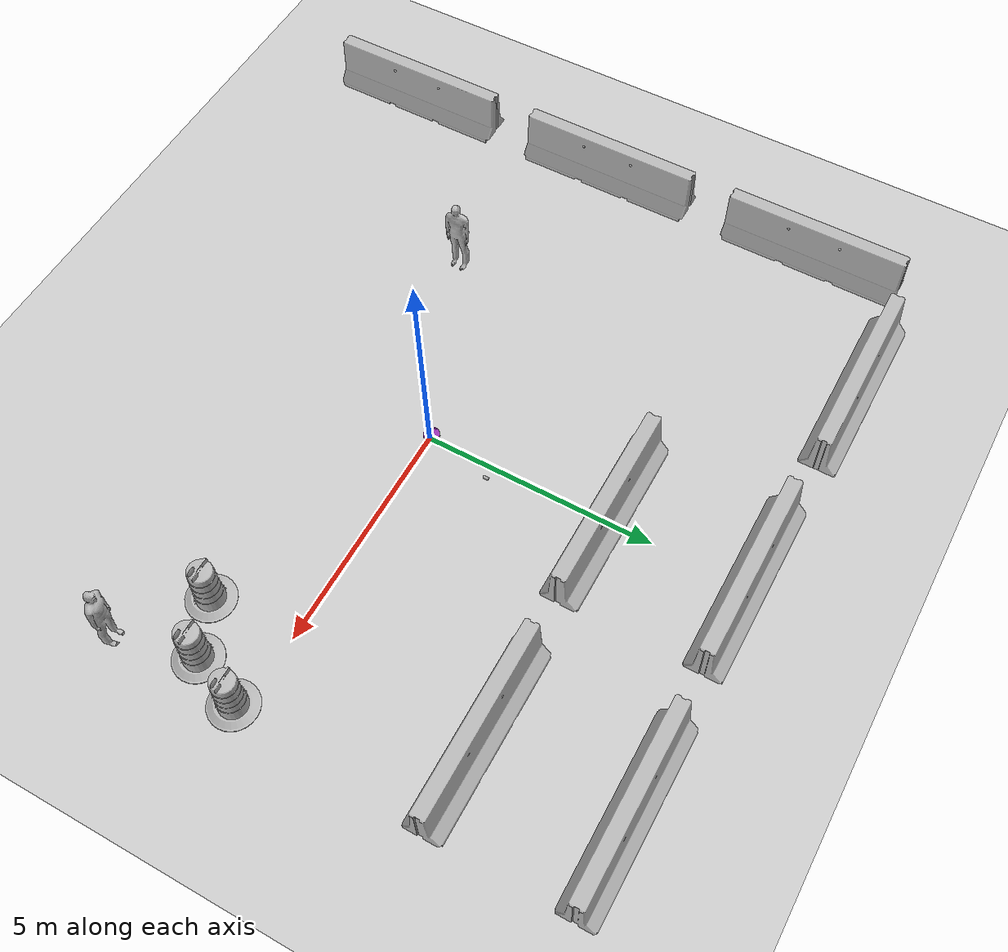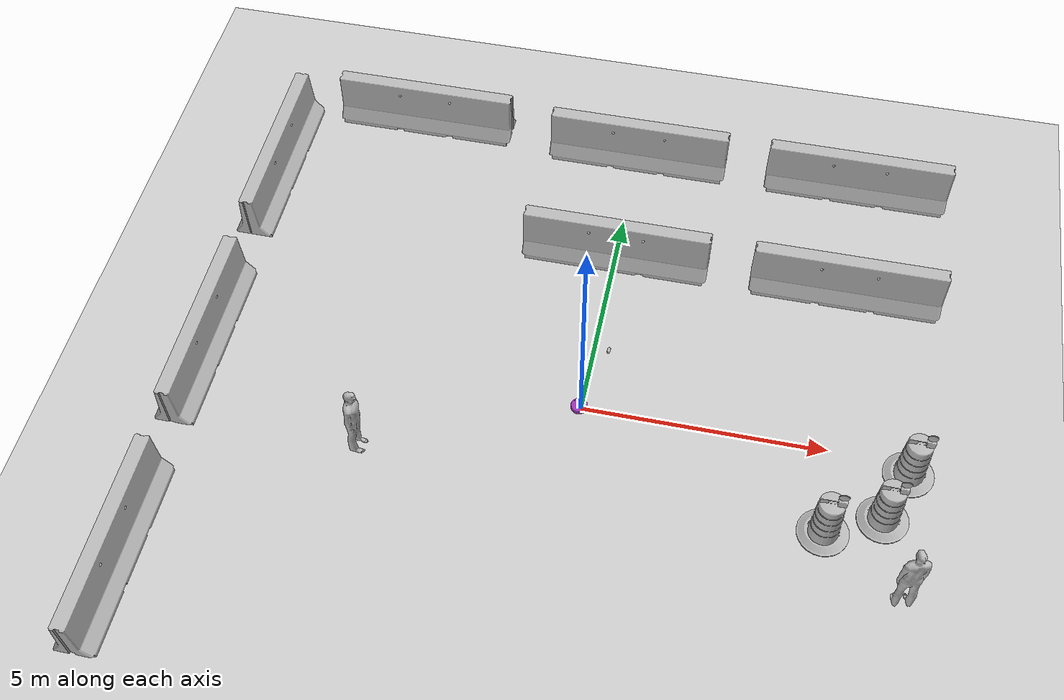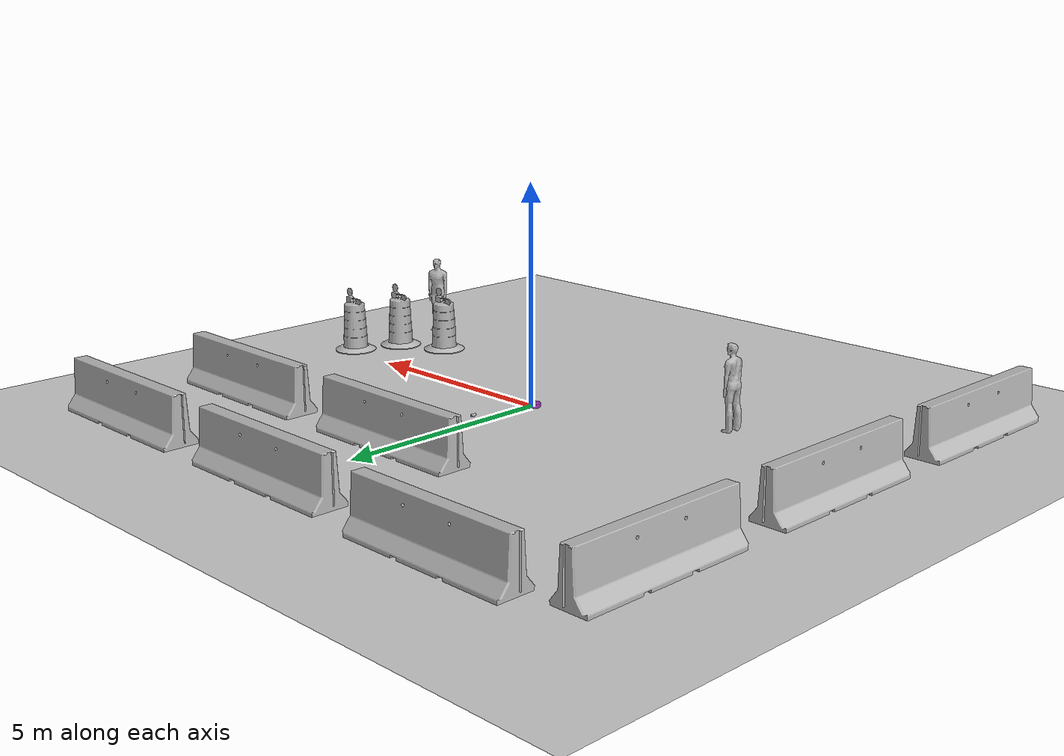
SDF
<sdf version="1.6">
 <world name="default">
  <light name="sun" type="directional">
   <pose>0 0 10 0 -0 0</pose>
   <diffuse>0.8 0.8 0.8 1</diffuse>
   <specular>0.2 0.2 0.2 1</specular>
   <attenuation>
    <range>1000</range>
    <constant>0.9</constant>
    <linear>0.01</linear>
    <quadratic>0.001</quadratic>
   </attenuation>
   <direction>-0.5 0.1 -0.9</direction>
  </light>
  <model name="ground_plane">
   <static>1</static>
   <link name="link">
    <collision name="collision">
     <geometry><plane><normal>0 0 1</normal><size>100 100</size></plane></geometry>
     <surface><friction><ode><mu>100</mu><mu2>50</mu2></ode></friction></surface>
    </collision>
    <visual name="visual">
     <cast_shadows>0</cast_shadows>
     <geometry><plane><normal>0 0 1</normal><size>100 100</size></plane></geometry>
     <material>
      <script><uri>file://media/materials/scripts/gazebo.material</uri><name>Gazebo/Grey</name></script>
     </material>
    </visual>
   </link>
  </model>
  <gravity>0 0 -9.8</gravity>
  <magnetic_field>6e-06 2.3e-05 -4.2e-05</magnetic_field>
  <atmosphere type="adiabatic"/>
  <physics name="default_physics" default="0" type="ode">
   <max_step_size>0.001</max_step_size>
   <real_time_factor>1</real_time_factor>
   <real_time_update_rate>1000</real_time_update_rate>
  </physics>
  <scene><ambient>0.4 0.4 0.4 1</ambient><background>0.7 0.7 0.7 1</background><shadows>1</shadows></scene>
  <spherical_coordinates>
   <surface_model>EARTH_WGS84</surface_model>
   <latitude_deg>0</latitude_deg>
   <longitude_deg>0</longitude_deg>
   <elevation>0</elevation>
   <heading_deg>0</heading_deg>
  </spherical_coordinates>
  <model name="coke_can">
   <link name="link">
    <inertial>
     <pose>-0.01 -0.012 0.15 0 -0 0</pose>
     <mass>0.39</mass>
     <inertia><ixx>0.00058</ixx><ixy>0</ixy><ixz>0</ixz><iyy>0.00058</iyy><iyz>0</iyz><izz>0.00019</izz></inertia>
    </inertial>
    <collision name="collision">
     <pose>0 0 -0.46 0 -0 0</pose>
     <geometry><mesh><uri>model://coke_can/meshes/coke_can.dae</uri></mesh></geometry>
     <surface>
      <friction><ode><mu>1</mu><mu2>1</mu2></ode></friction>
      <contact><ode><kp>1e+07</kp><kd>1</kd><min_depth>0.001</min_depth><max_vel>0.1</max_vel></ode></contact>
     </surface>
    </collision>
    <visual name="visual">
     <pose>0 0 -0.46 0 -0 0</pose>
     <geometry><mesh><uri>model://coke_can/meshes/coke_can.dae</uri></mesh></geometry>
    </visual>
   </link>
   <pose>0.307033 1.68265 0.066423 -1.57511 0.79082 -0.046848</pose>
  </model>
  <model name="coke_can_clone">
   <link name="link">
    <inertial>
     <pose>-0.01 -0.012 0.15 0 -0 0</pose>
     <mass>0.39</mass>
     <inertia><ixx>0.00058</ixx><ixy>0</ixy><ixz>0</ixz><iyy>0.00058</iyy><iyz>0</iyz><izz>0.00019</izz></inertia>
    </inertial>
    <collision name="collision">
     <pose>0 0 -0.46 0 -0 0</pose>
     <geometry><mesh><uri>model://coke_can/meshes/coke_can.dae</uri></mesh></geometry>
     <surface>
      <friction><ode><mu>1</mu><mu2>1</mu2></ode></friction>
      <contact><ode><kp>1e+07</kp><kd>1</kd><min_depth>0.001</min_depth><max_vel>0.1</max_vel></ode></contact>
     </surface>
    </collision>
    <visual name="visual">
     <pose>0 0 -0.46 0 -0 0</pose>
     <geometry><mesh><uri>model://coke_can/meshes/coke_can.dae</uri></mesh></geometry>
    </visual>
   </link>
   <pose>1.0067 1.64892 -0.004906 -0.064172 0.001466 -0.000136</pose>
  </model>
  <model name="Construction Barrel">
   <link name="link">
    <inertial>
     <pose>0 0 0.4 0 -0 0</pose>
     <mass>500</mass>
     <inertia><ixx>51.2096</ixx><iyy>51.2096</iyy><izz>25</izz><ixy>0</ixy><ixz>0</ixz><iyz>0</iyz></inertia>
    </inertial>
    <collision name="collision">
     <geometry><mesh><uri>model://construction_barrel/meshes/construction_barrel.dae</uri></mesh></geometry>
    </collision>
    <visual name="visual">
     <geometry><mesh><uri>model://construction_barrel/meshes/construction_barrel.dae</uri></mesh></geometry>
    </visual>
   </link>
   <pose>6.59117 -0.229072 -1e-06 4e-06 -2e-06 -3.7e-05</pose>
  </model>
  <model name="Construction Barrel_clone">
   <link name="link">
    <inertial>
     <pose>0 0 0.4 0 -0 0</pose>
     <mass>500</mass>
     <inertia><ixx>51.2096</ixx><iyy>51.2096</iyy><izz>25</izz><ixy>0</ixy><ixz>0</ixz><iyz>0</iyz></inertia>
    </inertial>
    <collision name="collision">
     <geometry><mesh><uri>model://construction_barrel/meshes/construction_barrel.dae</uri></mesh></geometry>
    </collision>
    <visual name="visual">
     <geometry><mesh><uri>model://construction_barrel/meshes/construction_barrel.dae</uri></mesh></geometry>
    </visual>
   </link>
   <pose>6.15493 -1.32723 -2e-06 1e-06 8e-06 -2.6e-05</pose>
  </model>
  <model name="Construction Barrel_clone_clone">
   <link name="link">
    <inertial>
     <pose>0 0 0.4 0 -0 0</pose>
     <mass>500</mass>
     <inertia><ixx>51.2096</ixx><iyy>51.2096</iyy><izz>25</izz><ixy>0</ixy><ixz>0</ixz><iyz>0</iyz></inertia>
    </inertial>
    <collision name="collision">
     <geometry><mesh><uri>model://construction_barrel/meshes/construction_barrel.dae</uri></mesh></geometry>
    </collision>
    <visual name="visual">
     <geometry><mesh><uri>model://construction_barrel/meshes/construction_barrel.dae</uri></mesh></geometry>
    </visual>
   </link>
   <pose>5.04937 -1.83027 -1e-06 2e-06 -1e-06 -4.4e-05</pose>
  </model>
  <model name="jersey_barrier">
   <static>1</static>
   <link name="link">
    <visual name="visual">
     <geometry><mesh><uri>model://jersey_barrier/meshes/jersey_barrier.dae</uri></mesh></geometry>
    </visual>
    <collision name="upright">
     <pose>0 0 0.5715 0 -0 0</pose>
     <geometry><box><size>4.06542 0.3063 1.143</size></box></geometry>
    </collision>
    <collision name="base">
     <pose>0 0 0.032258 0 -0 0</pose>
     <geometry><box><size>4.06542 0.8107 0.064516</size></box></geometry>
    </collision>
    <collision name="base2">
     <pose>0 0 0.1 0 -0 0</pose>
     <geometry><box><size>4.06542 0.65 0.1</size></box></geometry>
    </collision>
    <collision name="base3">
     <pose>0 0 0.2 0 -0 0</pose>
     <geometry><box><size>4.06542 0.5 0.1</size></box></geometry>
    </collision>
    <collision name="left-angle">
     <pose>0 -0.224 0.2401 0.9 -0 0</pose>
     <geometry><box><size>4.06542 0.5 0.064516</size></box></geometry>
    </collision>
    <collision name="right-angle">
     <pose>0 0.224 0.2401 -0.9 0 0</pose>
     <geometry><box><size>4.06542 0.5 0.064516</size></box></geometry>
    </collision>
   </link>
   <pose>-5.0568 7.16448 0 0 -0 0</pose>
  </model>
  <model name="jersey_barrier_clone">
   <static>1</static>
   <link name="link">
    <visual name="visual">
     <geometry><mesh><uri>model://jersey_barrier/meshes/jersey_barrier.dae</uri></mesh></geometry>
    </visual>
    <collision name="upright">
     <pose>0 0 0.5715 0 -0 0</pose>
     <geometry><box><size>4.06542 0.3063 1.143</size></box></geometry>
    </collision>
    <collision name="base">
     <pose>0 0 0.032258 0 -0 0</pose>
     <geometry><box><size>4.06542 0.8107 0.064516</size></box></geometry>
    </collision>
    <collision name="base2">
     <pose>0 0 0.1 0 -0 0</pose>
     <geometry><box><size>4.06542 0.65 0.1</size></box></geometry>
    </collision>
    <collision name="base3">
     <pose>0 0 0.2 0 -0 0</pose>
     <geometry><box><size>4.06542 0.5 0.1</size></box></geometry>
    </collision>
    <collision name="left-angle">
     <pose>0 -0.224 0.2401 0.9 -0 0</pose>
     <geometry><box><size>4.06542 0.5 0.064516</size></box></geometry>
    </collision>
    <collision name="right-angle">
     <pose>0 0.224 0.2401 -0.9 0 0</pose>
     <geometry><box><size>4.06542 0.5 0.064516</size></box></geometry>
    </collision>
   </link>
   <pose>0 7 0 0 -0 0</pose>
  </model>
  <model name="jersey_barrier_clone_clone">
   <static>1</static>
   <link name="link">
    <visual name="visual">
     <geometry><mesh><uri>model://jersey_barrier/meshes/jersey_barrier.dae</uri></mesh></geometry>
    </visual>
    <collision name="upright">
     <pose>0 0 0.5715 0 -0 0</pose>
     <geometry><box><size>4.06542 0.3063 1.143</size></box></geometry>
    </collision>
    <collision name="base">
     <pose>0 0 0.032258 0 -0 0</pose>
     <geometry><box><size>4.06542 0.8107 0.064516</size></box></geometry>
    </collision>
    <collision name="base2">
     <pose>0 0 0.1 0 -0 0</pose>
     <geometry><box><size>4.06542 0.65 0.1</size></box></geometry>
    </collision>
    <collision name="base3">
     <pose>0 0 0.2 0 -0 0</pose>
     <geometry><box><size>4.06542 0.5 0.1</size></box></geometry>
    </collision>
    <collision name="left-angle">
     <pose>0 -0.224 0.2401 0.9 -0 0</pose>
     <geometry><box><size>4.06542 0.5 0.064516</size></box></geometry>
    </collision>
    <collision name="right-angle">
     <pose>0 0.224 0.2401 -0.9 0 0</pose>
     <geometry><box><size>4.06542 0.5 0.064516</size></box></geometry>
    </collision>
   </link>
   <pose>5 7 0 0 -0 0</pose>
  </model>
  <model name="dtw_robot">
   <link name="base_link">
    <inertial>
     <pose>-0.05 0 0.02 0 -0 0</pose>
     <mass>0.1</mass>
     <inertia>
      <ixx>0.0001</ixx>
      <ixy>0</ixy>
      <ixz>-2.71051e-20</ixz>
      <iyy>0.0001</iyy>
      <iyz>0</iyz>
      <izz>0.0001</izz>
     </inertia>
    </inertial>
    <collision name="base_link_fixed_joint_lump__ball_link_collision">
     <pose>-0.14 0 0.02 0 -0 0</pose>
     <geometry><sphere><radius>0.02</radius></sphere></geometry>
     <surface><friction><ode><mu>0.5</mu><mu2>0.5</mu2></ode></friction></surface>
    </collision>
    <collision name="base_link_fixed_joint_lump__body_link_collision_1">
     <pose>-0.05 0 0.02 0 -0 0</pose>
     <geometry>
      <mesh>
       <scale>1 1 1</scale>
       <uri>/home/rigel/ROS_ws/Roombot/src/system/roombot_gazebo/stl/Roomba_model.stl</uri>
      </mesh>
     </geometry>
    </collision>
    <collision name="base_link_fixed_joint_lump__lidar_link_collision_2">
     <pose>-0.05 0 0.14 0 -0 0</pose>
     <geometry><cylinder><length>0.06</length><radius>0.02</radius></cylinder></geometry>
    </collision>
    <visual name="base_link_fixed_joint_lump__ball_link_visual">
     <pose>-0.14 0 0.02 0 -0 0</pose>
     <geometry><sphere><radius>0.02</radius></sphere></geometry>
     <material>
      <script><name>Gazebo/Grey</name><uri>file://media/materials/scripts/gazebo.material</uri></script>
     </material>
    </visual>
    <visual name="base_link_fixed_joint_lump__body_link_visual_1">
     <pose>-0.05 0 0.02 0 -0 0</pose>
     <geometry>
      <mesh>
       <scale>1 1 1</scale>
       <uri>/home/rigel/ROS_ws/Roombot/src/system/roombot_gazebo/stl/Roomba_model.stl</uri>
      </mesh>
     </geometry>
     <material>
      <script><name>Gazebo/Purple</name><uri>file://media/materials/scripts/gazebo.material</uri></script>
     </material>
    </visual>
    <visual name="base_link_fixed_joint_lump__lidar_link_visual_2">
     <pose>-0.05 0 0.14 0 -0 0</pose>
     <geometry><cylinder><length>0.06</length><radius>0.02</radius></cylinder></geometry>
     <material>
      <script><name>Gazebo/Blue</name><uri>file://media/materials/scripts/gazebo.material</uri></script>
     </material>
    </visual>
    <sensor name="camera" type="camera">
     <update_rate>10</update_rate>
     <camera name="camera">
      <pose>0 0 0 -1.57079 -1.57079 3.14159</pose>
      <horizontal_fov>1.39626</horizontal_fov>
      <image><width>800</width><height>600</height><format>R8G8B8</format></image>
      <clip><near>0.02</near><far>300</far></clip>
      <noise><type>gaussian</type><mean>0</mean><stddev>0.007</stddev></noise>
     </camera>
     <plugin name="camera_controller" filename="libgazebo_ros_camera.so">
      <alwaysOn>true</alwaysOn>
      <updateRate>0.0</updateRate>
      <cameraName>camera</cameraName>
      <imageTopicName>image_raw</imageTopicName>
      <cameraInfoTopicName>camera_info</cameraInfoTopicName>
      <frameName>camera_link</frameName>
      <hackBaseline>0.07</hackBaseline>
      <distortionK1>0.0</distortionK1>
      <distortionK2>0.0</distortionK2>
      <distortionK3>0.0</distortionK3>
      <distortionT1>0.0</distortionT1>
      <distortionT2>0.0</distortionT2>
      <robotNamespace>/</robotNamespace>
     </plugin>
     <pose>-0.05 0 0.3 -1.5708 -0 -1.5708</pose>
    </sensor>
    <sensor name="imu_sensor" type="imu">
     <always_on>1</always_on>
     <update_rate>100</update_rate>
     <visualize>1</visualize>
     <topic>data</topic>
     <plugin name="imu_plugin" filename="libgazebo_ros_imu_sensor.so">
      <topicName>imu/data</topicName>
      <bodyName>imu_link</bodyName>
      <updateRateHZ>10.0</updateRateHZ>
      <gaussianNoise>0.0</gaussianNoise>
      <xyzOffset>0 0 0</xyzOffset>
      <rpyOffset>0 0 0</rpyOffset>
      <frameName>imu_link</frameName>
      <robotNamespace>/</robotNamespace>
     </plugin>
     <pose>-0.05 0 0 0 -0 0</pose>
    </sensor>
    <sensor name="lidar" type="ray">
     <visualize>0</visualize>
     <update_rate>10</update_rate>
     <ray>
      <scan>
       <horizontal>
        <samples>400</samples>
        <resolution>1</resolution>
        <min_angle>-1.5708</min_angle>
        <max_angle>1.5708</max_angle>
       </horizontal>
       <vertical><samples>1</samples><min_angle>0</min_angle><max_angle>0</max_angle></vertical>
      </scan>
      <range><min>0.1</min><max>20</max><resolution>0.01</resolution></range>
      <noise><type>gaussian</type><mean>0</mean><stddev>0.01</stddev></noise>
     </ray>
     <plugin name="gazebo_ros_lidar_controller" filename="libgazebo_ros_laser.so">
      <topicName>/lidar_link/scan</topicName>
      <frameName>lidar_link</frameName>
      <robotNamespace>/</robotNamespace>
     </plugin>
     <pose>-0.05 0 0.14 0 -0 0</pose>
    </sensor>
   </link>
   <link name="left_wheel_link">
    <pose>0 0.1 0.03 -1.5708 0 0</pose>
    <inertial>
     <mass>0.1</mass>
     <inertia><ixx>0.0001</ixx><ixy>0</ixy><ixz>0</ixz><iyy>0.0001</iyy><iyz>0</iyz><izz>0.0001</izz></inertia>
    </inertial>
    <collision name="left_wheel_link_collision">
     <geometry><cylinder><length>0.01</length><radius>0.03</radius></cylinder></geometry>
     <surface>
      <contact><ode><kp>50000</kp><kd>10</kd></ode></contact>
      <friction><ode><mu>2.5</mu><mu2>2.5</mu2></ode></friction>
     </surface>
    </collision>
    <visual name="left_wheel_link_visual">
     <geometry><cylinder><length>0.01</length><radius>0.03</radius></cylinder></geometry>
     <material>
      <script><name>Gazebo/Grey</name><uri>file://media/materials/scripts/gazebo.material</uri></script>
     </material>
    </visual>
   </link>
   <joint name="left_wheel_joint" type="revolute">
    <child>left_wheel_link</child>
    <parent>base_link</parent>
    <axis>
     <xyz>0 1 0</xyz>
     <limit><lower>-1e+16</lower><upper>1e+16</upper></limit>
     <dynamics>
      <damping>0.1</damping>
      <friction>0</friction>
      <spring_reference>0</spring_reference>
      <spring_stiffness>0</spring_stiffness>
     </dynamics>
     <use_parent_model_frame>1</use_parent_model_frame>
    </axis>
   </joint>
   <link name="right_wheel_link">
    <pose>0 -0.1 0.03 -1.5708 0 0</pose>
    <inertial>
     <mass>0.1</mass>
     <inertia><ixx>0.0001</ixx><ixy>0</ixy><ixz>0</ixz><iyy>0.0001</iyy><iyz>0</iyz><izz>0.0001</izz></inertia>
    </inertial>
    <collision name="right_wheel_link_collision">
     <geometry><cylinder><length>0.01</length><radius>0.03</radius></cylinder></geometry>
     <surface>
      <contact><ode><kp>50000</kp><kd>10</kd></ode></contact>
      <friction><ode><mu>2.5</mu><mu2>2.5</mu2></ode></friction>
     </surface>
    </collision>
    <visual name="right_wheel_link_visual">
     <geometry><cylinder><length>0.01</length><radius>0.03</radius></cylinder></geometry>
     <material>
      <script><name>Gazebo/Grey</name><uri>file://media/materials/scripts/gazebo.material</uri></script>
     </material>
    </visual>
   </link>
   <joint name="right_wheel_joint" type="revolute">
    <child>right_wheel_link</child>
    <parent>base_link</parent>
    <axis>
     <xyz>0 1 0</xyz>
     <limit><lower>-1e+16</lower><upper>1e+16</upper></limit>
     <dynamics>
      <damping>0.1</damping>
      <friction>0</friction>
      <spring_reference>0</spring_reference>
      <spring_stiffness>0</spring_stiffness>
     </dynamics>
     <use_parent_model_frame>1</use_parent_model_frame>
    </axis>
   </joint>
   <static>0</static>
   <plugin name="gazebo_ros_control" filename="libgazebo_ros_control.so">
    <robotNamespace>/dtw_robot</robotNamespace>
   </plugin>
   <pose>-3.3e-05 0 -1.4e-05 -0 6.6e-05 2.3e-05</pose>
  </model>
  <model name="jersey_barrier_clone_0_clone">
   <static>1</static>
   <link name="link">
    <visual name="visual">
     <geometry><mesh><uri>model://jersey_barrier/meshes/jersey_barrier.dae</uri></mesh></geometry>
    </visual>
    <collision name="upright">
     <pose>0 0 0.5715 0 -0 0</pose>
     <geometry><box><size>4.06542 0.3063 1.143</size></box></geometry>
    </collision>
    <collision name="base">
     <pose>0 0 0.032258 0 -0 0</pose>
     <geometry><box><size>4.06542 0.8107 0.064516</size></box></geometry>
    </collision>
    <collision name="base2">
     <pose>0 0 0.1 0 -0 0</pose>
     <geometry><box><size>4.06542 0.65 0.1</size></box></geometry>
    </collision>
    <collision name="base3">
     <pose>0 0 0.2 0 -0 0</pose>
     <geometry><box><size>4.06542 0.5 0.1</size></box></geometry>
    </collision>
    <collision name="left-angle">
     <pose>0 -0.224 0.2401 0.9 -0 0</pose>
     <geometry><box><size>4.06542 0.5 0.064516</size></box></geometry>
    </collision>
    <collision name="right-angle">
     <pose>0 0.224 0.2401 -0.9 0 0</pose>
     <geometry><box><size>4.06542 0.5 0.064516</size></box></geometry>
    </collision>
   </link>
   <pose>0 4 0 0 -0 0</pose>
  </model>
  <model name="jersey_barrier_clone_0_clone_clone">
   <static>1</static>
   <link name="link">
    <visual name="visual">
     <geometry><mesh><uri>model://jersey_barrier/meshes/jersey_barrier.dae</uri></mesh></geometry>
    </visual>
    <collision name="upright">
     <pose>0 0 0.5715 0 -0 0</pose>
     <geometry><box><size>4.06542 0.3063 1.143</size></box></geometry>
    </collision>
    <collision name="base">
     <pose>0 0 0.032258 0 -0 0</pose>
     <geometry><box><size>4.06542 0.8107 0.064516</size></box></geometry>
    </collision>
    <collision name="base2">
     <pose>0 0 0.1 0 -0 0</pose>
     <geometry><box><size>4.06542 0.65 0.1</size></box></geometry>
    </collision>
    <collision name="base3">
     <pose>0 0 0.2 0 -0 0</pose>
     <geometry><box><size>4.06542 0.5 0.1</size></box></geometry>
    </collision>
    <collision name="left-angle">
     <pose>0 -0.224 0.2401 0.9 -0 0</pose>
     <geometry><box><size>4.06542 0.5 0.064516</size></box></geometry>
    </collision>
    <collision name="right-angle">
     <pose>0 0.224 0.2401 -0.9 0 0</pose>
     <geometry><box><size>4.06542 0.5 0.064516</size></box></geometry>
    </collision>
   </link>
   <pose>5 4 0 0 -0 0</pose>
  </model>
  <model name="jersey_barrier_clone_0">
   <static>1</static>
   <link name="link">
    <visual name="visual">
     <geometry><mesh><uri>model://jersey_barrier/meshes/jersey_barrier.dae</uri></mesh></geometry>
    </visual>
    <collision name="upright">
     <pose>0 0 0.5715 0 -0 0</pose>
     <geometry><box><size>4.06542 0.3063 1.143</size></box></geometry>
    </collision>
    <collision name="base">
     <pose>0 0 0.032258 0 -0 0</pose>
     <geometry><box><size>4.06542 0.8107 0.064516</size></box></geometry>
    </collision>
    <collision name="base2">
     <pose>0 0 0.1 0 -0 0</pose>
     <geometry><box><size>4.06542 0.65 0.1</size></box></geometry>
    </collision>
    <collision name="base3">
     <pose>0 0 0.2 0 -0 0</pose>
     <geometry><box><size>4.06542 0.5 0.1</size></box></geometry>
    </collision>
    <collision name="left-angle">
     <pose>0 -0.224 0.2401 0.9 -0 0</pose>
     <geometry><box><size>4.06542 0.5 0.064516</size></box></geometry>
    </collision>
    <collision name="right-angle">
     <pose>0 0.224 0.2401 -0.9 0 0</pose>
     <geometry><box><size>4.06542 0.5 0.064516</size></box></geometry>
    </collision>
   </link>
   <pose>-8 5 0 0 -0 1.57</pose>
  </model>
  <model name="jersey_barrier_clone_1">
   <static>1</static>
   <link name="link">
    <visual name="visual">
     <geometry><mesh><uri>model://jersey_barrier/meshes/jersey_barrier.dae</uri></mesh></geometry>
    </visual>
    <collision name="upright">
     <pose>0 0 0.5715 0 -0 0</pose>
     <geometry><box><size>4.06542 0.3063 1.143</size></box></geometry>
    </collision>
    <collision name="base">
     <pose>0 0 0.032258 0 -0 0</pose>
     <geometry><box><size>4.06542 0.8107 0.064516</size></box></geometry>
    </collision>
    <collision name="base2">
     <pose>0 0 0.1 0 -0 0</pose>
     <geometry><box><size>4.06542 0.65 0.1</size></box></geometry>
    </collision>
    <collision name="base3">
     <pose>0 0 0.2 0 -0 0</pose>
     <geometry><box><size>4.06542 0.5 0.1</size></box></geometry>
    </collision>
    <collision name="left-angle">
     <pose>0 -0.224 0.2401 0.9 -0 0</pose>
     <geometry><box><size>4.06542 0.5 0.064516</size></box></geometry>
    </collision>
    <collision name="right-angle">
     <pose>0 0.224 0.2401 -0.9 0 0</pose>
     <geometry><box><size>4.06542 0.5 0.064516</size></box></geometry>
    </collision>
   </link>
   <pose>-8 0 0 0 -0 1.57</pose>
  </model>
  <model name="jersey_barrier_clone_1_clone">
   <static>1</static>
   <link name="link">
    <visual name="visual">
     <geometry><mesh><uri>model://jersey_barrier/meshes/jersey_barrier.dae</uri></mesh></geometry>
    </visual>
    <collision name="upright">
     <pose>0 0 0.5715 0 -0 0</pose>
     <geometry><box><size>4.06542 0.3063 1.143</size></box></geometry>
    </collision>
    <collision name="base">
     <pose>0 0 0.032258 0 -0 0</pose>
     <geometry><box><size>4.06542 0.8107 0.064516</size></box></geometry>
    </collision>
    <collision name="base2">
     <pose>0 0 0.1 0 -0 0</pose>
     <geometry><box><size>4.06542 0.65 0.1</size></box></geometry>
    </collision>
    <collision name="base3">
     <pose>0 0 0.2 0 -0 0</pose>
     <geometry><box><size>4.06542 0.5 0.1</size></box></geometry>
    </collision>
    <collision name="left-angle">
     <pose>0 -0.224 0.2401 0.9 -0 0</pose>
     <geometry><box><size>4.06542 0.5 0.064516</size></box></geometry>
    </collision>
    <collision name="right-angle">
     <pose>0 0.224 0.2401 -0.9 0 0</pose>
     <geometry><box><size>4.06542 0.5 0.064516</size></box></geometry>
    </collision>
   </link>
   <pose>-8 -5 0 0 -0 1.57</pose>
  </model>
  <model name="person_standing">
   <link name="link">
    <inertial>
     <pose>0 -0.1 0.95 0 -0 0</pose>
     <mass>80</mass>
     <inertia><ixx>24.88</ixx><ixy>0</ixy><ixz>0</ixz><iyy>25.73</iyy><iyz>0</iyz><izz>2.48</izz></inertia>
    </inertial>
    <collision name="bottom">
     <pose>0 -0.1 0.01 0 -0 0</pose>
     <geometry><box><size>0.5 0.35 0.02</size></box></geometry>
    </collision>
    <collision name="person">
     <pose>0 0 0.02 0.04 -0 0</pose>
     <geometry><mesh><uri>model://person_standing/meshes/standing.dae</uri></mesh></geometry>
    </collision>
    <visual name="visual">
     <pose>0 0 0.02 0.04 -0 0</pose>
     <geometry><mesh><uri>model://person_standing/meshes/standing.dae</uri></mesh></geometry>
    </visual>
   </link>
   <pose>-4.27984 -1.75855 0 0 -0 1.57</pose>
  </model>
  <model name="person_standing_clone">
   <link name="link">
    <inertial>
     <pose>0 -0.1 0.95 0 -0 0</pose>
     <mass>80</mass>
     <inertia><ixx>24.88</ixx><ixy>0</ixy><ixz>0</ixz><iyy>25.73</iyy><iyz>0</iyz><izz>2.48</izz></inertia>
    </inertial>
    <collision name="bottom">
     <pose>0 -0.1 0.01 0 -0 0</pose>
     <geometry><box><size>0.5 0.35 0.02</size></box></geometry>
    </collision>
    <collision name="person">
     <pose>0 0 0.02 0.04 -0 0</pose>
     <geometry><mesh><uri>model://person_standing/meshes/standing.dae</uri></mesh></geometry>
    </collision>
    <visual name="visual">
     <pose>0 0 0.02 0.04 -0 0</pose>
     <geometry><mesh><uri>model://person_standing/meshes/standing.dae</uri></mesh></geometry>
    </visual>
   </link>
   <pose>6.59995 -3.04346 0 0 0 -2.90614</pose>
  </model>
 </world>
</sdf>
